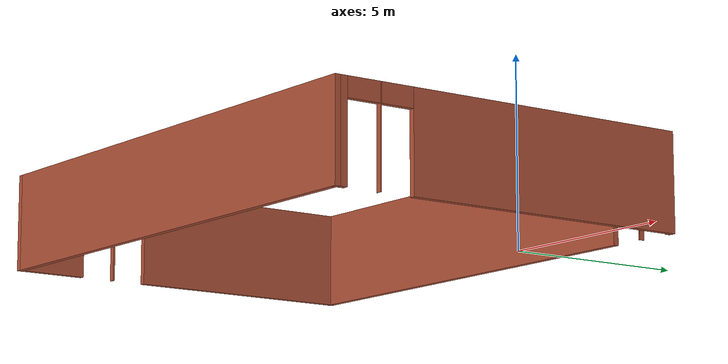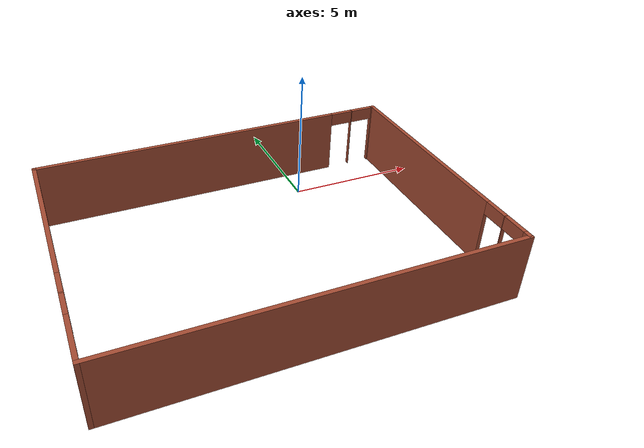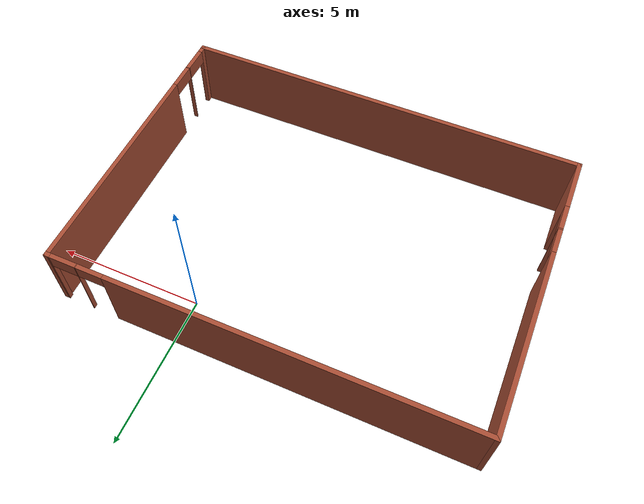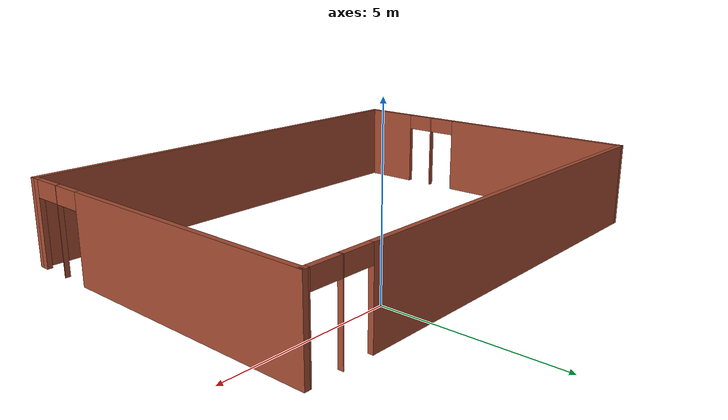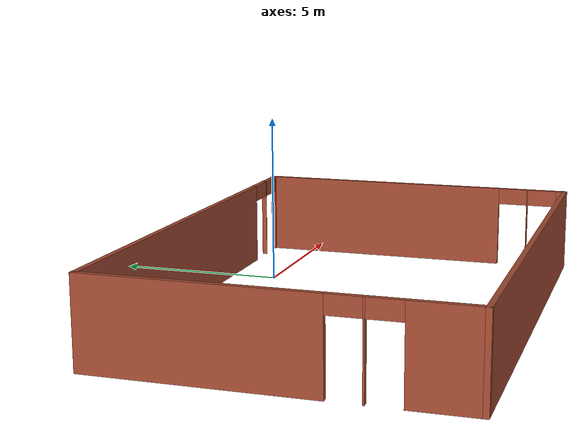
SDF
<?xml version='1.0'?>
<sdf version='1.7'>
  <model name='room_v2'>
    <pose>-2.9315 -3.52561 0 0 -0 0</pose>
    <link name='Wall_4'>
      <pose>0 4.925 0 0 -0 0</pose>
      <visual name='Wall_4_Visual_0'>
        <pose>-1.01163 0 1.25 0 -0 0</pose>
        <geometry>
          <box>
            <size>11.9767 0.15 2.5</size>
          </box>
        </geometry>
        <material>
          <script>
            <uri>file://media/materials/scripts/gazebo.material</uri>
            <name>Gazebo/Bricks</name>
          </script>
          <ambient>1 1 1 1</ambient>
        </material>
        <meta>
          <layer>0</layer>
        </meta>
      </visual>
      <collision name='Wall_4_Collision_0'>
        <geometry>
          <box>
            <size>11.9767 0.15 2.5</size>
          </box>
        </geometry>
        <pose>-1.01163 0 1.25 0 -0 0</pose>
      </collision>
      <visual name='Wall_4_Visual_1'>
        <pose>5.88936 0 1.25 0 -0 0</pose>
        <geometry>
          <box>
            <size>0.025224 0.15 2.5</size>
          </box>
        </geometry>
        <material>
          <script>
            <uri>file://media/materials/scripts/gazebo.material</uri>
            <name>Gazebo/Bricks</name>
          </script>
          <ambient>1 1 1 1</ambient>
        </material>
        <meta>
          <layer>0</layer>
        </meta>
      </visual>
      <collision name='Wall_4_Collision_1'>
        <geometry>
          <box>
            <size>0.025224 0.15 2.5</size>
          </box>
        </geometry>
        <pose>5.88936 0 1.25 0 -0 0</pose>
      </collision>
      <visual name='Wall_4_Visual_2'>
        <pose>6.90098 0 1.25 0 -0 0</pose>
        <geometry>
          <box>
            <size>0.198031 0.15 2.5</size>
          </box>
        </geometry>
        <material>
          <script>
            <uri>file://media/materials/scripts/gazebo.material</uri>
            <name>Gazebo/Bricks</name>
          </script>
          <ambient>1 1 1 1</ambient>
        </material>
        <meta>
          <layer>0</layer>
        </meta>
      </visual>
      <collision name='Wall_4_Collision_2'>
        <geometry>
          <box>
            <size>0.198031 0.15 2.5</size>
          </box>
        </geometry>
        <pose>6.90098 0 1.25 0 -0 0</pose>
      </collision>
      <visual name='Wall_4_Visual_3'>
        <pose>5.42674 0 2.25 0 -0 0</pose>
        <geometry>
          <box>
            <size>0.9 0.15 0.5</size>
          </box>
        </geometry>
        <material>
          <script>
            <uri>file://media/materials/scripts/gazebo.material</uri>
            <name>Gazebo/Bricks</name>
          </script>
          <ambient>1 1 1 1</ambient>
        </material>
        <meta>
          <layer>0</layer>
        </meta>
      </visual>
      <collision name='Wall_4_Collision_3'>
        <geometry>
          <box>
            <size>0.9 0.15 0.5</size>
          </box>
        </geometry>
        <pose>5.42674 0 2.25 0 -0 0</pose>
      </collision>
      <visual name='Wall_4_Visual_4'>
        <pose>6.35197 0 2.25 0 -0 0</pose>
        <geometry>
          <box>
            <size>0.9 0.15 0.5</size>
          </box>
        </geometry>
        <material>
          <script>
            <uri>file://media/materials/scripts/gazebo.material</uri>
            <name>Gazebo/Bricks</name>
          </script>
          <ambient>1 1 1 1</ambient>
        </material>
        <meta>
          <layer>0</layer>
        </meta>
      </visual>
      <collision name='Wall_4_Collision_4'>
        <geometry>
          <box>
            <size>0.9 0.15 0.5</size>
          </box>
        </geometry>
        <pose>6.35197 0 2.25 0 -0 0</pose>
      </collision>
    </link>
    <link name='Wall_5'>
      <pose>6.925 0 0 0 -0 -1.5708</pose>
      <visual name='Wall_5_Visual_0'>
        <pose>-1.08182 0 1.25 0 -0 0</pose>
        <geometry>
          <box>
            <size>7.83637 0.15 2.5</size>
          </box>
        </geometry>
        <material>
          <script>
            <uri>file://media/materials/scripts/gazebo.material</uri>
            <name>Gazebo/Bricks</name>
          </script>
          <ambient>1 1 1 1</ambient>
        </material>
        <meta>
          <layer>0</layer>
        </meta>
      </visual>
      <collision name='Wall_5_Collision_0'>
        <geometry>
          <box>
            <size>7.83637 0.15 2.5</size>
          </box>
        </geometry>
        <pose>-1.08182 0 1.25 0 -0 0</pose>
      </collision>
      <visual name='Wall_5_Visual_1'>
        <pose>3.74898 0 1.25 0 -0 0</pose>
        <geometry>
          <box>
            <size>0.025224 0.15 2.5</size>
          </box>
        </geometry>
        <material>
          <script>
            <uri>file://media/materials/scripts/gazebo.material</uri>
            <name>Gazebo/Bricks</name>
          </script>
          <ambient>1 1 1 1</ambient>
        </material>
        <meta>
          <layer>0</layer>
        </meta>
      </visual>
      <collision name='Wall_5_Collision_1'>
        <geometry>
          <box>
            <size>0.025224 0.15 2.5</size>
          </box>
        </geometry>
        <pose>3.74898 0 1.25 0 -0 0</pose>
      </collision>
      <visual name='Wall_5_Visual_2'>
        <pose>4.8308 0 1.25 0 -0 0</pose>
        <geometry>
          <box>
            <size>0.33841 0.15 2.5</size>
          </box>
        </geometry>
        <material>
          <script>
            <uri>file://media/materials/scripts/gazebo.material</uri>
            <name>Gazebo/Bricks</name>
          </script>
          <ambient>1 1 1 1</ambient>
        </material>
        <meta>
          <layer>0</layer>
        </meta>
      </visual>
      <collision name='Wall_5_Collision_2'>
        <geometry>
          <box>
            <size>0.33841 0.15 2.5</size>
          </box>
        </geometry>
        <pose>4.8308 0 1.25 0 -0 0</pose>
      </collision>
      <visual name='Wall_5_Visual_3'>
        <pose>3.28637 0 2.25 0 -0 0</pose>
        <geometry>
          <box>
            <size>0.9 0.15 0.5</size>
          </box>
        </geometry>
        <material>
          <script>
            <uri>file://media/materials/scripts/gazebo.material</uri>
            <name>Gazebo/Bricks</name>
          </script>
          <ambient>1 1 1 1</ambient>
        </material>
        <meta>
          <layer>0</layer>
        </meta>
      </visual>
      <collision name='Wall_5_Collision_3'>
        <geometry>
          <box>
            <size>0.9 0.15 0.5</size>
          </box>
        </geometry>
        <pose>3.28637 0 2.25 0 -0 0</pose>
      </collision>
      <visual name='Wall_5_Visual_4'>
        <pose>4.21159 0 2.25 0 -0 0</pose>
        <geometry>
          <box>
            <size>0.9 0.15 0.5</size>
          </box>
        </geometry>
        <material>
          <script>
            <uri>file://media/materials/scripts/gazebo.material</uri>
            <name>Gazebo/Bricks</name>
          </script>
          <ambient>1 1 1 1</ambient>
        </material>
        <meta>
          <layer>0</layer>
        </meta>
      </visual>
      <collision name='Wall_5_Collision_4'>
        <geometry>
          <box>
            <size>0.9 0.15 0.5</size>
          </box>
        </geometry>
        <pose>4.21159 0 2.25 0 -0 0</pose>
      </collision>
    </link>
    <link name='Wall_6'>
      <collision name='Wall_6_Collision'>
        <geometry>
          <box>
            <size>14 0.15 2.5</size>
          </box>
        </geometry>
        <pose>0 0 1.25 0 -0 0</pose>
      </collision>
      <visual name='Wall_6_Visual'>
        <pose>0 0 1.25 0 -0 0</pose>
        <geometry>
          <box>
            <size>14 0.15 2.5</size>
          </box>
        </geometry>
        <material>
          <script>
            <uri>file://media/materials/scripts/gazebo.material</uri>
            <name>Gazebo/Bricks</name>
          </script>
          <ambient>1 1 1 1</ambient>
        </material>
        <meta>
          <layer>0</layer>
        </meta>
      </visual>
      <pose>0 -4.925 0 0 -0 3.14159</pose>
    </link>
    <link name='Wall_7'>
      <pose>-6.925 0 0 0 -0 1.5708</pose>
      <visual name='Wall_7_Visual_0'>
        <pose>-4.05592 0 1.25 0 -0 0</pose>
        <geometry>
          <box>
            <size>1.88816 0.15 2.5</size>
          </box>
        </geometry>
        <material>
          <script>
            <uri>file://media/materials/scripts/gazebo.material</uri>
            <name>Gazebo/Bricks</name>
          </script>
          <ambient>1 1 1 1</ambient>
        </material>
        <meta>
          <layer>0</layer>
        </meta>
      </visual>
      <collision name='Wall_7_Collision_0'>
        <geometry>
          <box>
            <size>1.88816 0.15 2.5</size>
          </box>
        </geometry>
        <pose>-4.05592 0 1.25 0 -0 0</pose>
      </collision>
      <visual name='Wall_7_Visual_1'>
        <pose>-2.18766 0 1.25 0 -0 0</pose>
        <geometry>
          <box>
            <size>0.048355 0.15 2.5</size>
          </box>
        </geometry>
        <material>
          <script>
            <uri>file://media/materials/scripts/gazebo.material</uri>
            <name>Gazebo/Bricks</name>
          </script>
          <ambient>1 1 1 1</ambient>
        </material>
        <meta>
          <layer>0</layer>
        </meta>
      </visual>
      <collision name='Wall_7_Collision_1'>
        <geometry>
          <box>
            <size>0.048355 0.15 2.5</size>
          </box>
        </geometry>
        <pose>-2.18766 0 1.25 0 -0 0</pose>
      </collision>
      <visual name='Wall_7_Visual_2'>
        <pose>1.86826 0 1.25 0 -0 0</pose>
        <geometry>
          <box>
            <size>6.26349 0.15 2.5</size>
          </box>
        </geometry>
        <material>
          <script>
            <uri>file://media/materials/scripts/gazebo.material</uri>
            <name>Gazebo/Bricks</name>
          </script>
          <ambient>1 1 1 1</ambient>
        </material>
        <meta>
          <layer>0</layer>
        </meta>
      </visual>
      <collision name='Wall_7_Collision_2'>
        <geometry>
          <box>
            <size>6.26349 0.15 2.5</size>
          </box>
        </geometry>
        <pose>1.86826 0 1.25 0 -0 0</pose>
      </collision>
      <visual name='Wall_7_Visual_3'>
        <pose>-2.66184 0 2.25 0 -0 0</pose>
        <geometry>
          <box>
            <size>0.9 0.15 0.5</size>
          </box>
        </geometry>
        <material>
          <script>
            <uri>file://media/materials/scripts/gazebo.material</uri>
            <name>Gazebo/Bricks</name>
          </script>
          <ambient>1 1 1 1</ambient>
        </material>
        <meta>
          <layer>0</layer>
        </meta>
      </visual>
      <collision name='Wall_7_Collision_3'>
        <geometry>
          <box>
            <size>0.9 0.15 0.5</size>
          </box>
        </geometry>
        <pose>-2.66184 0 2.25 0 -0 0</pose>
      </collision>
      <visual name='Wall_7_Visual_4'>
        <pose>-1.71348 0 2.25 0 -0 0</pose>
        <geometry>
          <box>
            <size>0.9 0.15 0.5</size>
          </box>
        </geometry>
        <material>
          <script>
            <uri>file://media/materials/scripts/gazebo.material</uri>
            <name>Gazebo/Bricks</name>
          </script>
          <ambient>1 1 1 1</ambient>
        </material>
        <meta>
          <layer>0</layer>
        </meta>
      </visual>
      <collision name='Wall_7_Collision_4'>
        <geometry>
          <box>
            <size>0.9 0.15 0.5</size>
          </box>
        </geometry>
        <pose>-1.71348 0 2.25 0 -0 0</pose>
      </collision>
    </link>
    <static>1</static>
  </model>
</sdf>
